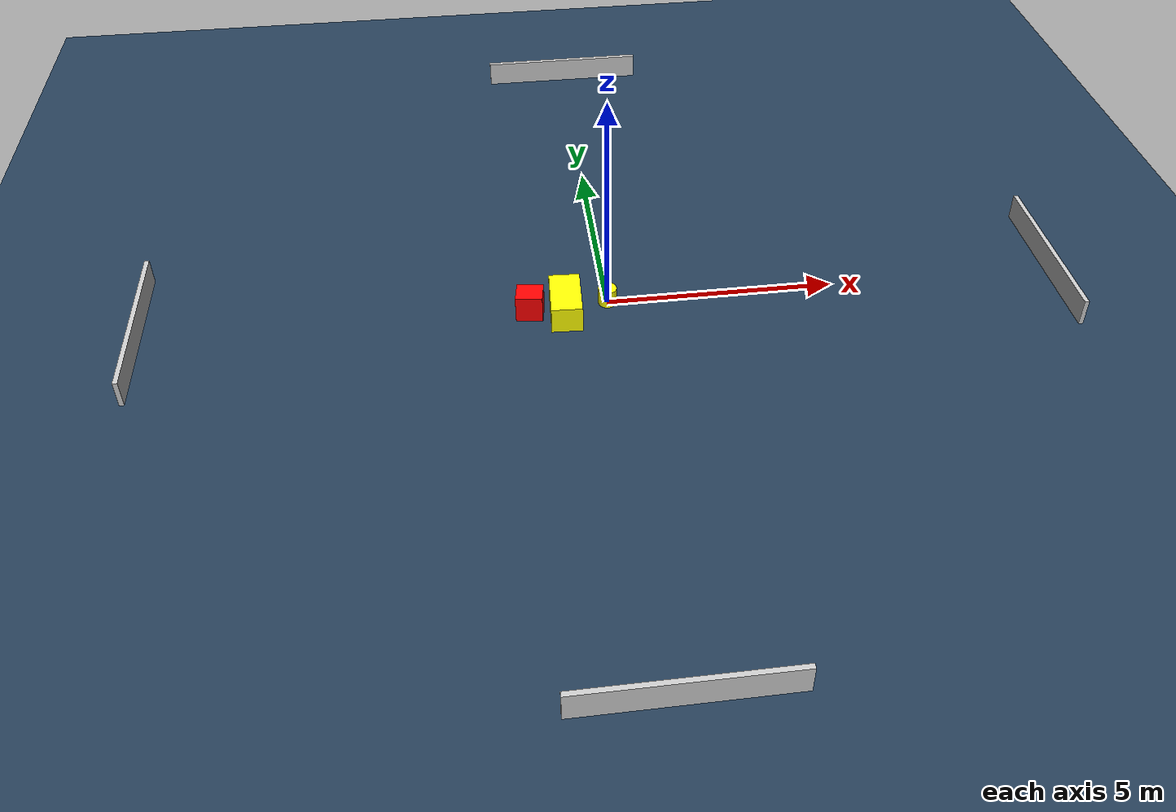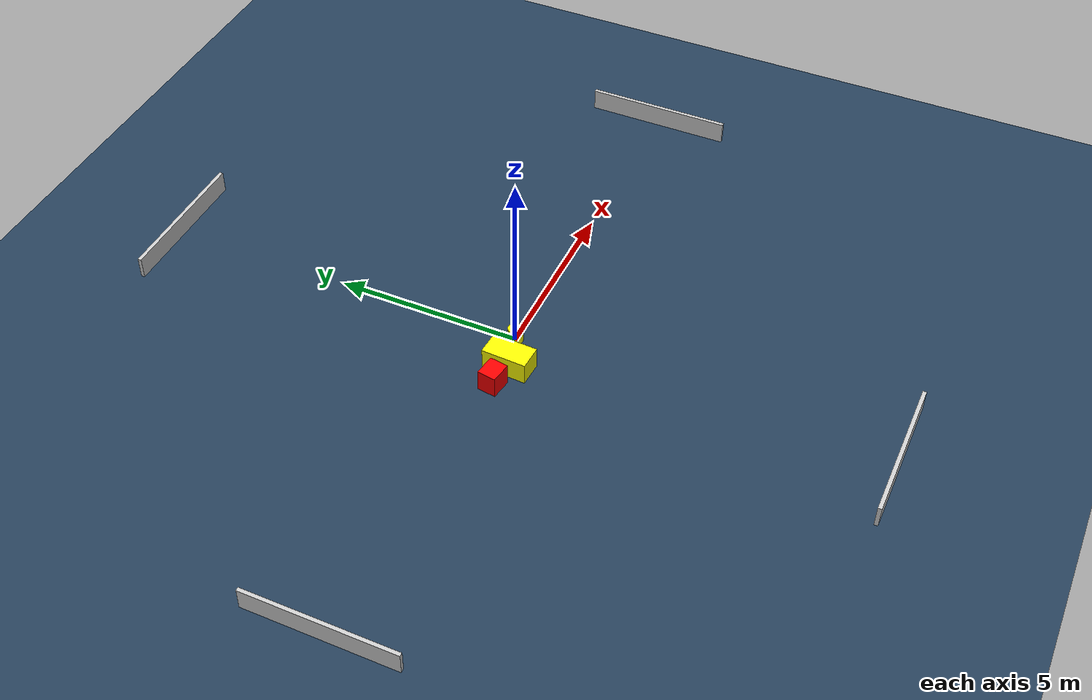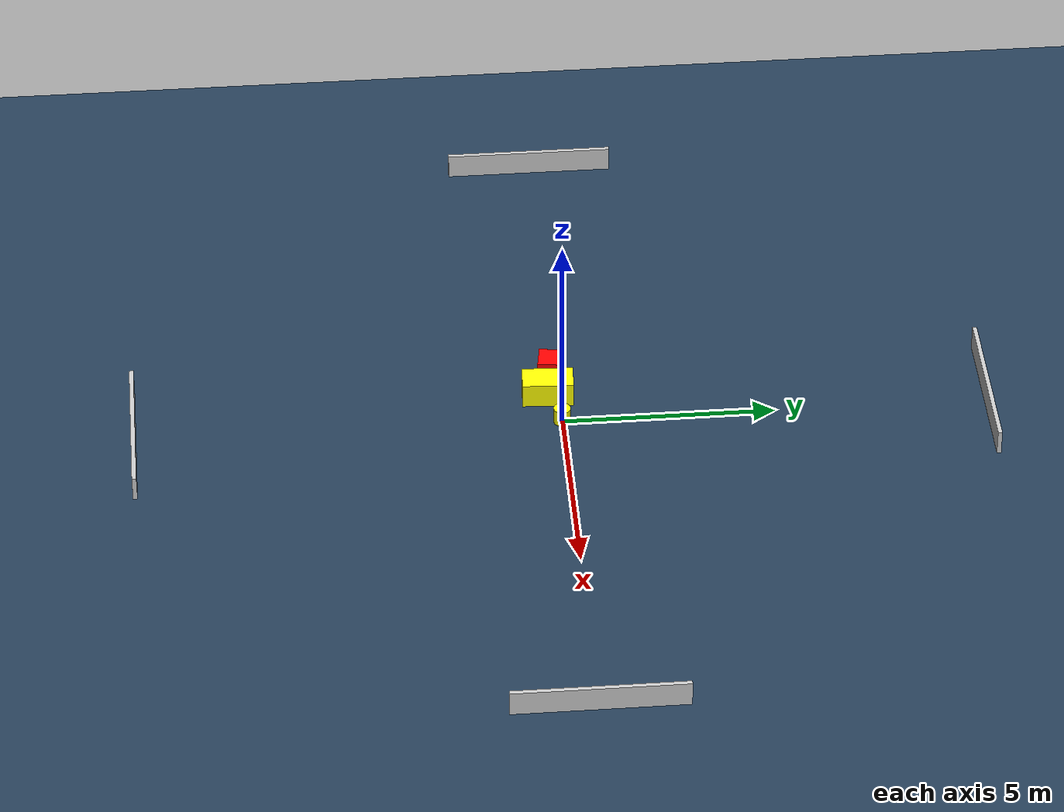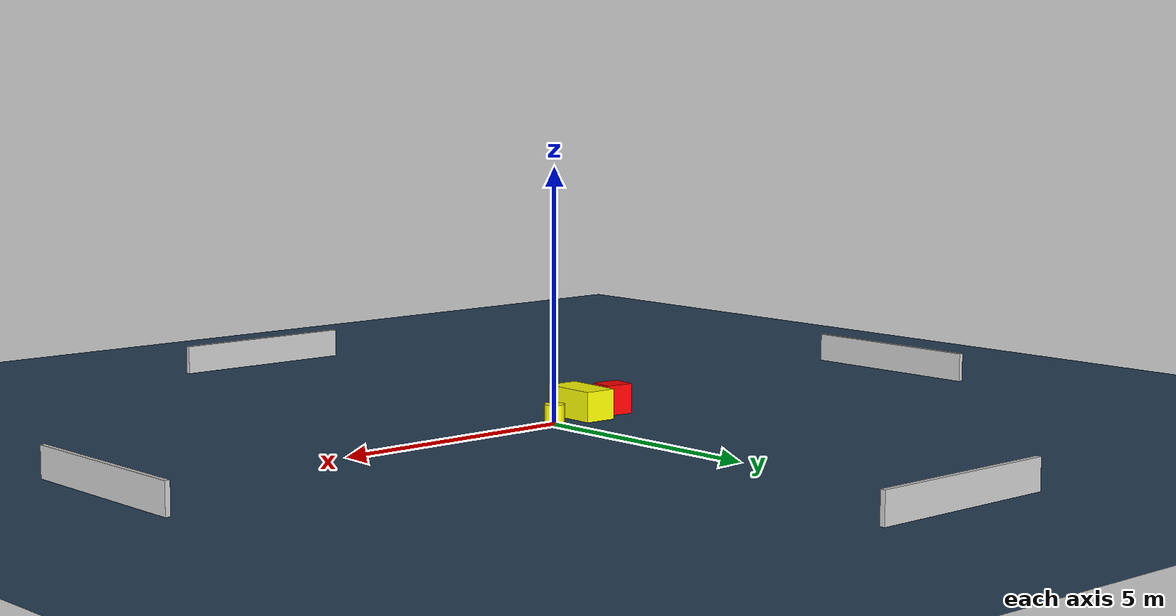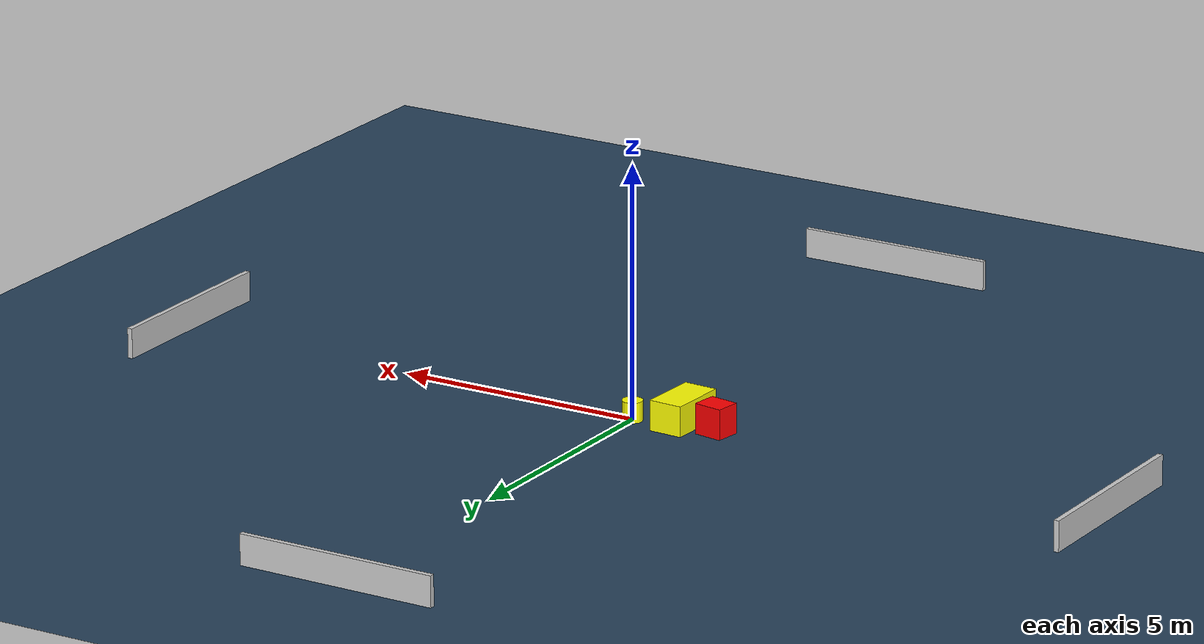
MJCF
<?xml version="1.0" ?>
<mujoco model="generated_environment">
  <option timestep="0.01" integrator="RK4" cone="elliptic"/>
  <default>
    <geom density="1"/>
  </default>
  <asset>
    <texture builtin="gradient" height="3072" name="skybox" rgb1="0.3 0.5 0.7" rgb2="0 0 0" type="skybox" width="512"/>
    <texture builtin="checker" height="300" name="groundplane" rgb1="0.2 0.3 0.4" rgb2="0.1 0.2 0.3" type="2d" width="300"/>
    <material name="groundplane" reflectance="0.2" texrepeat="5 5" texture="groundplane"/>
  </asset>
  <worldbody>
    <light dir="0 0 -1" directional="true" pos="0 0 1.5"/>
    <geom condim="3" friction="0.5 0.005 0.001" material="groundplane" name="floor" pos="0 0 0" size="0 0 0.05" type="plane"/>
    <body name="walls">
      <geom name="wall_1" condim="4" pos="-10.0 0.0 0.3" rgba="0.800000011920929 0.800000011920929 0.800000011920929 1.0" size="0.05 2.0 0.3" type="box"/>
      <geom name="wall_2" condim="4" pos="10.0 0.0 0.3" rgba="0.800000011920929 0.800000011920929 0.800000011920929 1.0" size="0.05 2.0 0.3" type="box"/>
      <geom name="wall_3" condim="4" pos="0.0 -10.0 0.3" rgba="0.800000011920929 0.800000011920929 0.800000011920929 1.0" size="2.0 0.05 0.3" type="box"/>
      <geom name="wall_4" condim="4" pos="0.0 10.0 0.3" rgba="0.800000011920929 0.800000011920929 0.800000011920929 1.0" size="2.0 0.05 0.3" type="box"/>
    </body>
    <body name="robot">
      <joint name="joint_x" type="slide" pos="0 0 0" axis="1 0 0"/>
      <joint name="joint_y" type="slide" pos="0 0 0" axis="0 1 0"/>
      <geom name="robot" type="cylinder" pos="0.0 0.0 0.2" size="0.2 0.2 0.0" mass="5.0" friction="1.0 0.005 0.0001" condim="4" rgba="1.0 1.0 0.0 1.0"/>
    </body>
    <body name="obstacle_1_movable">
      <geom name="obstacle_1_movable" condim="4" pos="-0.938744765317048 -0.26501643481664333 0.3" euler="0 0 87.42606628623975" friction="0.0 0.005 0.001" rgba="1.0 1.0 0.0 1.0" size="0.6016037266615901 0.335522162408575 0.3" type="box" mass="0.1"/>
      <joint type="free"/>
    </body>
    <body name="obstacle_2_static">
      <geom name="obstacle_2_static" condim="4" pos="-1.7044042442707845 -0.17097535095764857 0.3" euler="0 0 171.45378574300457" friction="0.0 0.005 0.001" rgba="1.0 0.0 0.0 1.0" size="0.2891826047725847 0.25064272968105117 0.3" type="box"/>
    </body>
  </worldbody>
  <actuator>
    <motor name="actuator_x" joint="joint_x" gear="1" ctrlrange="-1 1"/>
    <motor name="actuator_y" joint="joint_y" gear="1" ctrlrange="-1 1"/>
  </actuator>
</mujoco>
